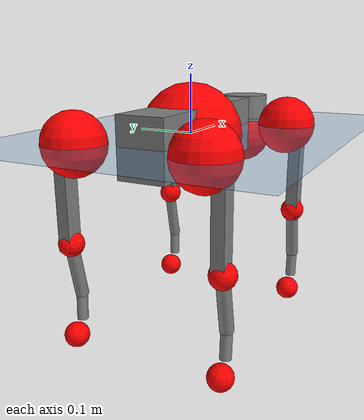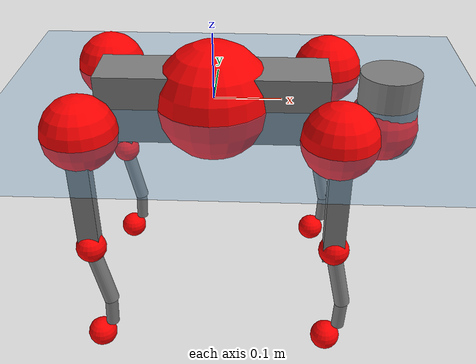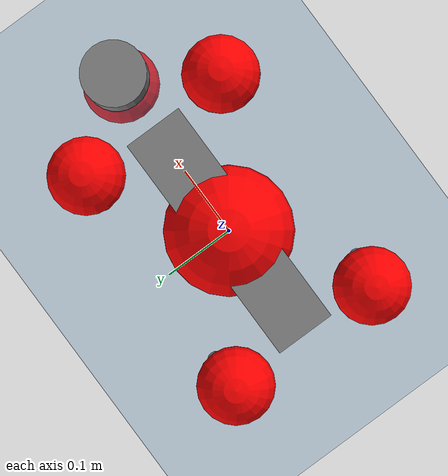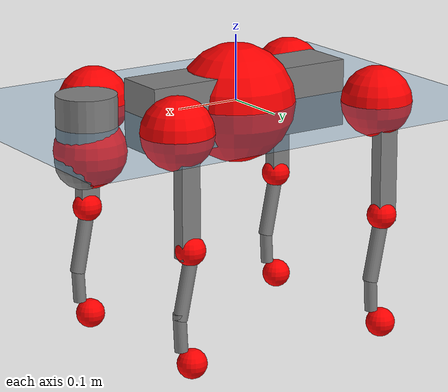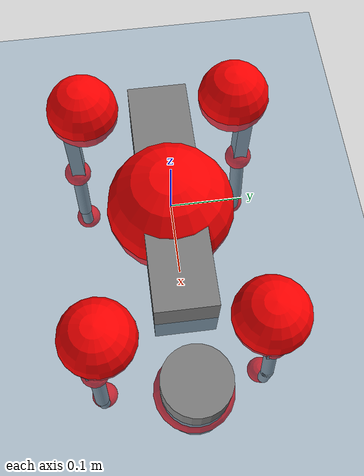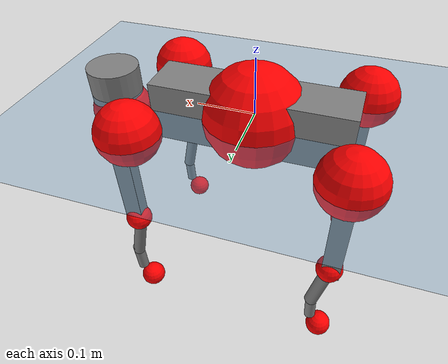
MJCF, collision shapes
<mujoco model="go2">
  <compiler angle="radian" assetdir="assets" balanceinertia="true" inertiafromgeom="false"/>

  <option timestep="0.005" density="1.2" viscosity="2e-05"/>

  <size nkey="1"/>

  <visual>
    <quality shadowsize="8192"/>
    <map shadowclip="0.5"/>
  </visual>

  <default>
    <default class="/">
      <geom contype="0" conaffinity="0" group="1" solref="-1000 -80"/>
      <site size="0.01 0.005 0.005" group="5"/>
      <general forcelimited="true" biastype="affine" gainprm="20" biasprm="0 -20 -0.5"/>
      <default class="go2">
        <joint armature="0.01" damping="0.01" frictionloss="0.2"/>
        <geom condim="1" margin="0.001"/>
        <default class="visual">
          <geom type="mesh" group="2"/>
        </default>
        <default class="collision">
          <geom group="3"/>
          <default class="foot">
            <geom size="0.022 0 0" condim="6" priority="1" friction="0.8 0.02 0.01" solimp="0.015 1 0.022"/>
          </default>
        </default>
        <default class="reward_collision_sphere">
          <geom group="5" rgba="1 0 0 1"/>
        </default>
      </default>
    </default>
  </default>

  <asset>
    <texture type="skybox" colorspace="auto" name="//unnamed_texture_0" builtin="gradient" rgb1="0.95 0.95 0.95" rgb2="0.95 0.95 0.95" width="100" height="600"/>
    <texture type="2d" colorspace="auto" name="texplane" builtin="checker" rgb1="0.345 0.575 0.748" rgb2="0.345 0.575 0.748" markrgb="1 1 1" width="512" height="512"/>
    <material name="MatPlane" class="/" texture="texplane" texuniform="true" texrepeat="2 2" specular="0.9"/>
    <material name="metal" class="/" rgba="0.9 0.95 0.95 1"/>
    <material name="black" class="/" rgba="0 0 0 1"/>
    <material name="white" class="/"/>
    <material name="gray" class="/" rgba="0.671705 0.692426 0.77427 1"/>
    <mesh name="base_0" class="/" file="base_0.obj"/>
    <mesh name="base_1" class="/" file="base_1.obj"/>
    <mesh name="base_2" class="/" file="base_2.obj"/>
    <mesh name="base_3" class="/" file="base_3.obj"/>
    <mesh name="base_4" class="/" file="base_4.obj"/>
    <mesh name="hip_0" class="/" file="hip_0.obj"/>
    <mesh name="hip_1" class="/" file="hip_1.obj"/>
    <mesh name="thigh_0" class="/" file="thigh_0.obj"/>
    <mesh name="thigh_1" class="/" file="thigh_1.obj"/>
    <mesh name="thigh_mirror_0" class="/" file="thigh_mirror_0.obj"/>
    <mesh name="thigh_mirror_1" class="/" file="thigh_mirror_1.obj"/>
    <mesh name="calf_0" class="/" file="calf_0.obj"/>
    <mesh name="calf_1" class="/" file="calf_1.obj"/>
    <mesh name="calf_mirror_0" class="/" file="calf_mirror_0.obj"/>
    <mesh name="calf_mirror_1" class="/" file="calf_mirror_1.obj"/>
    <mesh name="foot" class="/" file="foot.obj"/>
  </asset>

  <worldbody>
    <geom name="floor" class="/" size="100 100 0.125" type="plane" group="0" material="MatPlane"/>
    <light name="toplight_shadow" class="/" pos="0 0 5" dir="0.0990148 0.0990148 -0.990148" type="directional" ambient="0.04 0.04 0.04" diffuse="0.55 0.55 0.55" specular="0.12 0.12 0.12"/>
    <light name="toplight_fill" class="/" pos="0 0 5" dir="0.0990148 0.0990148 -0.990148" type="directional" castshadow="false" ambient="0.04 0.04 0.04" diffuse="0.3 0.3 0.3" specular="0.08 0.08 0.08"/>
    <body name="trunk" childclass="go2" pos="1.46324e-05 -9.02912e-05 -0.00276273" quat="1 1.16164e-05 0.000192387 -0.000223093">
      <inertial pos="0.0177834 0.00129541 -0.00188886" quat="-0.000479567 0.713494 -0.00175775 0.700659" mass="4.81781" diaginertia="0.0624466 0.0846101 0.00825577"/>
      <joint name="//unnamed_joint_0" type="free" armature="0" damping="0" frictionloss="0"/>
      <geom name="//unnamed_geom_1" class="visual" material="black" mesh="base_0"/>
      <geom name="//unnamed_geom_2" class="visual" material="black" mesh="base_1"/>
      <geom name="//unnamed_geom_3" class="visual" material="black" mesh="base_2"/>
      <geom name="//unnamed_geom_4" class="visual" material="white" mesh="base_3"/>
      <geom name="//unnamed_geom_5" class="visual" material="gray" mesh="base_4"/>
      <geom name="trunk_1" class="collision" size="0.168514 0.0418822 0.0510649" type="box"/>
      <geom name="trunk_2" class="collision" size="0.0447938 0.0403144" pos="0.256261 0 0.00808586" type="cylinder"/>
      <geom name="trunk_3" class="collision" size="0.0421061" pos="0.263455 0 -0.0485152"/>
      <geom name="//unnamed_geom_9" class="reward_collision_sphere" size="0.0895875"/>
      <geom name="//unnamed_geom_10" class="reward_collision_sphere" size="0.0537525" pos="0.251765 0 -0.0363864"/>
      <site name="imu" pos="-0.0144437 -0.013737 0.0438994" size="0.00895875"/>
      <camera name="track" pos="0 -1.95976 0" quat="0.707107 0.707107 0 0" mode="trackcom"/>
      <camera name="ego_camera" pos="0.280539 0 0.0363864" quat="-0.5 -0.5 0.5 0.5"/>
      <body name="FL_hip" pos="0.17425 0.0427918 0.00277609" quat="1 0.000192533 0.000312802 9.04218e-05">
        <inertial pos="-0.00691705 0.00289469 -0.0028857" quat="0.49479 0.500609 0.505223 0.499323" mass="0.474972" diaginertia="0.000513133 0.000512415 0.000169108"/>
        <joint name="FL_hip_joint" pos="0 0 0" axis="0.999989 0.00219984 -0.00425128" range="-1.09422 1.04268" armature="0.0102975" damping="0.0195862" frictionloss="0.158452"/>
        <geom name="//unnamed_geom_11" class="visual" material="metal" mesh="hip_0"/>
        <geom name="//unnamed_geom_12" class="visual" material="gray" mesh="hip_1"/>
        <geom name="//unnamed_geom_13" class="collision" size="0.0412103 0.0179175" pos="0 0.0783902 0" quat="0.707107 0.707107 0 0" type="cylinder"/>
        <geom name="//unnamed_geom_14" class="reward_collision_sphere" size="0.0537525" pos="0 0.0685915 0"/>
        <body name="FL_thigh" pos="0.000193727 0.0928036 0.00341495" quat="1 -0.000264411 -0.000366211 7.34682e-06">
          <inertial pos="-0.00315333 -0.0219943 -0.0290305" quat="0.83164 0.0849521 -0.0188327 0.548456" mass="0.815435" diaginertia="0.00347634 0.00531315 0.000292828"/>
          <joint name="FL_thigh_joint" pos="0 0 0" axis="0.0148929 0.999886 -0.0025761" range="-1.62811 3.54132" armature="0.0093272" damping="0.00557912" frictionloss="0.170313"/>
          <geom name="//unnamed_geom_15" class="visual" material="metal" mesh="thigh_0"/>
          <geom name="//unnamed_geom_16" class="visual" material="gray" mesh="thigh_1"/>
          <geom name="//unnamed_geom_17" class="collision" size="0.0954107 0.0109745 0.0152299" pos="0 0 -0.0861144" quat="0.707107 0 0.707107 0" type="box"/>
          <body name="FL_calf" pos="-0.00377252 0.00208453 -0.169821" quat="1 -0.000184071 -0.000711119 -0.000327585">
            <inertial pos="0.00685285 -0.000504241 -0.114064" quat="0.710701 0.00148696 -0.00459775 0.703478" mass="0.163823" diaginertia="0.000874166 0.00131755 1.75237e-05"/>
            <joint name="FL_calf_joint" pos="0 0 0" axis="-0.00161642 0.999955 0.0093884" range="-2.74064 -0.832873" armature="0.00799025" damping="0.0172162" frictionloss="0.154556"/>
            <geom name="//unnamed_geom_18" class="visual" material="gray" mesh="calf_0"/>
            <geom name="//unnamed_geom_19" class="visual" material="black" mesh="calf_1"/>
            <geom name="FL_calf0" class="collision" size="0.0107505 0.0537525" pos="0.0071933 0 -0.0485152" quat="0.994493 0 -0.104807 0" type="cylinder"/>
            <geom name="//unnamed_geom_21" class="collision" size="0.00985463 0.029116" pos="0.0179832 0 -0.119671" quat="0.999688 0 0.0249974 0" type="cylinder"/>
            <geom name="//unnamed_geom_22" class="visual" pos="0 0 -0.172229" quat="1 0 0 0" material="black" mesh="foot"/>
            <geom name="FL_foot" class="foot" size="0.0179015" pos="-0.00179832 0 -0.172229"/>
            <geom name="//unnamed_geom_24" class="reward_collision_sphere" size="0.0223969"/>
            <geom name="//unnamed_geom_25" class="reward_collision_sphere" size="0.0223969" pos="-0.00179832 0 -0.172229"/>
            <site name="FL_foot" class="foot" pos="-0.00179832 0 -0.172229" size="0.00895875"/>
          </body>
        </body>
      </body>
      <body name="FR_hip" pos="0.177054 -0.048436 0.00116398" quat="0.999999 0.000644316 -0.00113634 0.000475215">
        <inertial pos="-0.004582 -0.00262711 -0.000259155" quat="0.499749 0.504464 0.497856 0.497902" mass="0.483807" diaginertia="0.000513834 0.000508625 0.000165692"/>
        <joint name="FR_hip_joint" pos="0 0 0" axis="0.99999 -0.00406139 0.00196345" stiffness="0.0144655" range="-0.9992 1.0168" armature="0.00902842" damping="0.0214805" frictionloss="0.153842"/>
        <geom name="//unnamed_geom_26" class="visual" pos="0 1.49222e-09 6.40046e-08" quat="4.63268e-05 1 0 0" material="metal" mesh="hip_0"/>
        <geom name="//unnamed_geom_27" class="visual" pos="0 2.41907e-09 -1.58308e-07" quat="4.63268e-05 1 0 0" material="gray" mesh="hip_1"/>
        <geom name="//unnamed_geom_28" class="collision" size="0.0412103 0.0179175" pos="0 -0.0783902 0" quat="0.707107 0.707107 0 0" type="cylinder"/>
        <geom name="//unnamed_geom_29" class="reward_collision_sphere" size="0.0537525" pos="0 -0.0685915 0"/>
        <body name="FR_thigh" pos="0.00114399 -0.0911183 -0.00019932" quat="1 0.000414844 -0.000438041 -0.000570846">
          <inertial pos="-0.00450766 0.0225668 -0.0261898" quat="0.55028 -0.0183974 0.0836817 0.830573" mass="0.80842" diaginertia="0.00345507 0.00516924 0.0003065"/>
          <joint name="FR_thigh_joint" pos="0 0 0" axis="0.000134764 -1 0.00038869" range="-3.47984 1.53713" armature="0.00887222" damping="0" frictionloss="0.175056"/>
          <geom name="//unnamed_geom_30" class="visual" material="metal" mesh="thigh_mirror_0"/>
          <geom name="//unnamed_geom_31" class="visual" material="gray" mesh="thigh_mirror_1"/>
          <geom name="//unnamed_geom_32" class="collision" size="0.0954107 0.0109745 0.0152299" pos="0 0 -0.0861144" quat="0.707107 0 0.707107 0" type="box"/>
          <body name="FR_calf" pos="0.00151188 0.00158919 -0.168986" quat="1 -2.52717e-06 -5.34249e-05 -3.33297e-05">
            <inertial pos="0.00384005 0.000215569 -0.11352" quat="0.705154 -0.000870122 -0.00247768 0.709049" mass="0.173924" diaginertia="0.000912458 0.00133803 1.85777e-05"/>
            <joint name="FR_calf_joint" pos="0 0 0" axis="0.00293363 -0.999994 0.00168995" range="0.859648 2.67393" armature="0.00877956" damping="0.00592559" frictionloss="0.174274"/>
            <geom name="//unnamed_geom_33" class="visual" material="gray" mesh="calf_mirror_0"/>
            <geom name="//unnamed_geom_34" class="visual" material="black" mesh="calf_mirror_1"/>
            <geom name="FR_calf0" class="collision" size="0.0116464 0.0537525" pos="0.00899162 0 -0.0485152" quat="0.995004 0 -0.0998334 0" type="cylinder"/>
            <geom name="//unnamed_geom_36" class="collision" size="0.00985463 0.029116" pos="0.0179832 0 -0.119671" quat="0.999688 0 0.0249974 0" type="cylinder"/>
            <geom name="//unnamed_geom_37" class="visual" pos="0 0 -0.172229" quat="1 0 0 0" material="black" mesh="foot"/>
            <geom name="FR_foot" class="foot" size="0.0219471" pos="-0.00179832 0 -0.172229"/>
            <geom name="//unnamed_geom_39" class="reward_collision_sphere" size="0.0223969"/>
            <geom name="//unnamed_geom_40" class="reward_collision_sphere" size="0.0223969" pos="-0.00179832 0 -0.172229"/>
            <site name="FR_foot" class="foot" pos="-0.00179832 0 -0.172229" size="0.00895875"/>
          </body>
        </body>
      </body>
      <body name="RL_hip" pos="-0.174278 0.0483645 0.000945027" quat="1 0.000224413 -0.000215599 0.000587869">
        <inertial pos="0.00222875 -0.000100875 2.88469e-05" quat="0.505563 0.498269 0.497541 0.498585" mass="0.484302" diaginertia="0.00052934 0.000556428 0.000160673"/>
        <joint name="RL_hip_joint" pos="0 0 0" axis="-0.999745 0.00818823 -0.0210677" range="-1.03857 0.993959" armature="0.00892283" damping="0" frictionloss="0.203063"/>
        <geom name="//unnamed_geom_41" class="visual" pos="-7.89061e-10 0 -1.54674e-07" quat="4.63268e-05 0 1 0" material="metal" mesh="hip_0"/>
        <geom name="//unnamed_geom_42" class="visual" pos="-1.27916e-09 0 -1.37174e-07" quat="4.63268e-05 0 1 0" material="gray" mesh="hip_1"/>
        <geom name="//unnamed_geom_43" class="collision" size="0.0412103 0.0179175" pos="0 0.0783902 0" quat="0.707107 0.707107 0 0" type="cylinder"/>
        <geom name="//unnamed_geom_44" class="reward_collision_sphere" size="0.0537525" pos="0 0.0685915 0"/>
        <body name="RL_thigh" pos="0.000984917 0.0910793 -0.000117818" quat="0.999999 0.0013593 0.000356898 0.000248695">
          <inertial pos="-0.00494497 -0.0244333 -0.0264312" quat="0.832776 0.0763009 -0.0170181 0.548062" mass="0.818778" diaginertia="0.00357338 0.005195 0.000319685"/>
          <joint name="RL_thigh_joint" pos="0 0 0" axis="-0.00124315 0.999999 0.000272233" stiffness="0.0158527" range="-0.514799 4.5422" armature="0.00874333" damping="0" frictionloss="0.176733"/>
          <geom name="//unnamed_geom_45" class="visual" material="metal" mesh="thigh_0"/>
          <geom name="//unnamed_geom_46" class="visual" material="gray" mesh="thigh_1"/>
          <geom name="//unnamed_geom_47" class="collision" size="0.0954107 0.0109745 0.0152299" pos="0 0 -0.0861144" quat="0.707107 0 0.707107 0" type="box"/>
          <body name="RL_calf" pos="0.00252178 -0.000747521 -0.171525" quat="0.999999 -0.000121323 -0.00125997 2.46843e-05">
            <inertial pos="0.00825908 -0.00187986 -0.11702" quat="0.710702 0.0011964 -0.00467819 0.703476" mass="0.169572" diaginertia="0.00086223 0.00135398 1.84538e-05"/>
            <joint name="RL_calf_joint" pos="0 0 0" axis="0.0110202 0.999897 0.00919281" range="-2.71687 -0.838402" armature="0.00863589" damping="0.0155016" frictionloss="0.202314"/>
            <geom name="//unnamed_geom_48" class="visual" material="gray" mesh="calf_0"/>
            <geom name="//unnamed_geom_49" class="visual" material="black" mesh="calf_1"/>
            <geom name="RL_calf0" class="collision" size="0.0116464 0.0537525" pos="0.00899162 0 -0.0485152" quat="0.995004 0 -0.0998334 0" type="cylinder"/>
            <geom name="//unnamed_geom_51" class="collision" size="0.00985463 0.029116" pos="0.0179832 0 -0.119671" quat="0.999688 0 0.0249974 0" type="cylinder"/>
            <geom name="//unnamed_geom_52" class="visual" pos="0 0 -0.172229" quat="1 0 0 0" material="black" mesh="foot"/>
            <geom name="RL_foot" class="foot" size="0.0173471" pos="-0.00179832 0 -0.172229"/>
            <geom name="//unnamed_geom_54" class="reward_collision_sphere" size="0.0223969"/>
            <geom name="//unnamed_geom_55" class="reward_collision_sphere" size="0.0223969" pos="-0.00179832 0 -0.172229"/>
            <site name="RL_foot" class="foot" pos="-0.00179832 0 -0.172229" size="0.00895875"/>
          </body>
        </body>
      </body>
      <body name="RR_hip" pos="-0.17465 -0.0429063 0.00143316" quat="1 -0.000534857 -0.000749125 0.000156827">
        <inertial pos="0.00497592 0.000887806 -0.00223333" quat="0.497076 0.499145 0.498419 0.505321" mass="0.464597" diaginertia="0.000518952 0.000502501 0.00016058"/>
        <joint name="RR_hip_joint" pos="0 0 0" axis="-0.999885 0.0150686 -0.00139852" range="-1.09294 1.0547" armature="0.00795825" damping="0" frictionloss="0.204552"/>
        <geom name="//unnamed_geom_56" class="visual" pos="7.91855e-10 1.49222e-09 -2.18679e-07" quat="2.14617e-09 4.63268e-05 4.63268e-05 -1" material="metal" mesh="hip_0"/>
        <geom name="//unnamed_geom_57" class="visual" pos="1.27225e-09 2.41907e-09 2.11339e-08" quat="2.14617e-09 4.63268e-05 4.63268e-05 -1" material="gray" mesh="hip_1"/>
        <geom name="//unnamed_geom_58" class="collision" size="0.0412103 0.0179175" pos="0 -0.0783902 0" quat="0.707107 0.707107 0 0" type="cylinder"/>
        <geom name="//unnamed_geom_59" class="reward_collision_sphere" size="0.0537525" pos="0 -0.0685915 0"/>
        <body name="RR_thigh" pos="0.000845245 -0.0944682 -0.000916525" quat="1 -5.4618e-05 7.30687e-05 1.28716e-06">
          <inertial pos="-0.00328557 0.0223304 -0.023684" quat="0.543884 -0.0287116 0.0834296 0.834509" mass="0.820141" diaginertia="0.00351954 0.00526773 0.000305803"/>
          <joint name="RR_thigh_joint" pos="0 0 0" axis="-0.00407272 -0.999957 -0.00837478" stiffness="0.0100402" range="-4.49446 0.491556" armature="0.00924826" damping="0.0191764" frictionloss="0.191612"/>
          <geom name="//unnamed_geom_60" class="visual" material="metal" mesh="thigh_mirror_0"/>
          <geom name="//unnamed_geom_61" class="visual" material="gray" mesh="thigh_mirror_1"/>
          <geom name="//unnamed_geom_62" class="collision" size="0.0954107 0.0109745 0.0152299" pos="0 0 -0.0861144" quat="0.707107 0 0.707107 0" type="box"/>
          <body name="RR_calf" pos="0.00118342 -0.00259545 -0.173023" quat="0.999999 0.000653922 0.000893305 -0.00084958">
            <inertial pos="0.00808155 0.000991146 -0.114911" quat="0.707263 -0.00567282 0.0039193 0.706916" mass="0.164071" diaginertia="0.000846683 0.00125753 1.7854e-05"/>
            <joint name="RR_calf_joint" pos="0 0 0" axis="0.00440751 -0.999974 -0.00575662" stiffness="0.00374648" range="0.885381 2.76343" armature="0.00931543" damping="0.0156316" frictionloss="0.174095"/>
            <geom name="//unnamed_geom_63" class="visual" material="gray" mesh="calf_mirror_0"/>
            <geom name="//unnamed_geom_64" class="visual" material="black" mesh="calf_mirror_1"/>
            <geom name="RR_calf0" class="collision" size="0.0116464 0.0537525" pos="0.00899162 0 -0.0485152" quat="0.995004 0 -0.0998334 0" type="cylinder"/>
            <geom name="//unnamed_geom_66" class="collision" size="0.00985463 0.029116" pos="0.0179832 0 -0.119671" quat="0.999688 0 0.0249974 0" type="cylinder"/>
            <geom name="//unnamed_geom_67" class="visual" pos="0 0 -0.172229" quat="1 0 0 0" material="black" mesh="foot"/>
            <geom name="RR_foot" class="foot" size="0.0196566" pos="-0.00179832 0 -0.172229"/>
            <geom name="//unnamed_geom_69" class="reward_collision_sphere" size="0.0223969"/>
            <geom name="//unnamed_geom_70" class="reward_collision_sphere" size="0.0223969" pos="-0.00179832 0 -0.172229"/>
            <site name="RR_foot" class="foot" pos="-0.00179832 0 -0.172229" size="0.00895875"/>
          </body>
        </body>
      </body>
    </body>
  </worldbody>

  <contact>
    <pair class="/" geom1="floor" geom2="FL_foot" name="//unnamed_contact_0"/>
    <pair class="/" geom1="floor" geom2="FR_foot" name="//unnamed_contact_1"/>
    <pair class="/" geom1="floor" geom2="RL_foot" name="//unnamed_contact_2"/>
    <pair class="/" geom1="floor" geom2="RR_foot" name="//unnamed_contact_3"/>
  </contact>

  <actuator>
    <general name="FL_hip" class="/" joint="FL_hip_joint" forcerange="-19.0204 19.0204" gainprm="18.6287" biasprm="0 -18.6287 -0.47362"/>
    <general name="FL_thigh" class="/" joint="FL_thigh_joint" forcerange="-20.7881 20.7881" gainprm="18.6287" biasprm="0 -18.6287 -0.47362"/>
    <general name="FL_calf" class="/" joint="FL_calf_joint" forcerange="-41.9628 41.9628" gainprm="18.6287" biasprm="0 -18.6287 -0.47362"/>
    <general name="FR_hip" class="/" joint="FR_hip_joint" forcerange="-20.2267 20.2267" gainprm="18.6287" biasprm="0 -18.6287 -0.47362"/>
    <general name="FR_thigh" class="/" joint="FR_thigh_joint" forcerange="-22.6653 22.6653" gainprm="18.6287" biasprm="0 -18.6287 -0.47362"/>
    <general name="FR_calf" class="/" joint="FR_calf_joint" forcerange="-36.8543 36.8543" gainprm="18.6287" biasprm="0 -18.6287 -0.47362"/>
    <general name="RL_hip" class="/" joint="RL_hip_joint" forcerange="-23.4543 23.4543" gainprm="18.6287" biasprm="0 -18.6287 -0.47362"/>
    <general name="RL_thigh" class="/" joint="RL_thigh_joint" forcerange="-21.2975 21.2975" gainprm="18.6287" biasprm="0 -18.6287 -0.47362"/>
    <general name="RL_calf" class="/" joint="RL_calf_joint" forcerange="-36.5151 36.5151" gainprm="18.6287" biasprm="0 -18.6287 -0.47362"/>
    <general name="RR_hip" class="/" joint="RR_hip_joint" forcerange="-20.6477 20.6477" gainprm="18.6287" biasprm="0 -18.6287 -0.47362"/>
    <general name="RR_thigh" class="/" joint="RR_thigh_joint" forcerange="-21.3707 21.3707" gainprm="18.6287" biasprm="0 -18.6287 -0.47362"/>
    <general name="RR_calf" class="/" joint="RR_calf_joint" forcerange="-40.8824 40.8824" gainprm="18.6287" biasprm="0 -18.6287 -0.47362"/>
  </actuator>

  <sensor>
    <gyro site="imu" name="imu_angular_velocity"/>
    <velocimeter site="imu" name="imu_linear_velocity"/>
    <framelinvel objtype="site" objname="FL_foot" name="FL_foot_global_linear_velocity"/>
    <framelinvel objtype="site" objname="FR_foot" name="FR_foot_global_linear_velocity"/>
    <framelinvel objtype="site" objname="RL_foot" name="RL_foot_global_linear_velocity"/>
    <framelinvel objtype="site" objname="RR_foot" name="RR_foot_global_linear_velocity"/>
  </sensor>

  <keyframe>
    <key name="home" qpos="0 0 0.325 1 0 0 0 0.1 0.8 -1.5 -0.1 -0.8 1.5 -0.1 0.8 -1.5 0.1 -0.8 1.5"/>
  </keyframe>
</mujoco>
